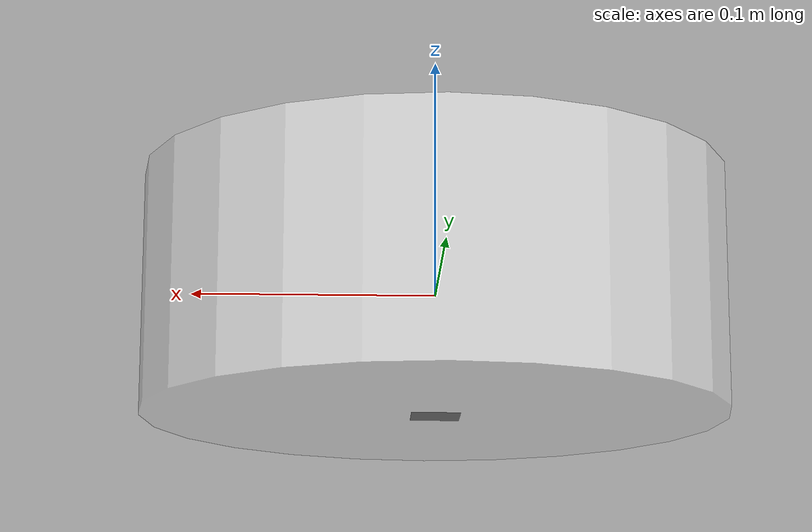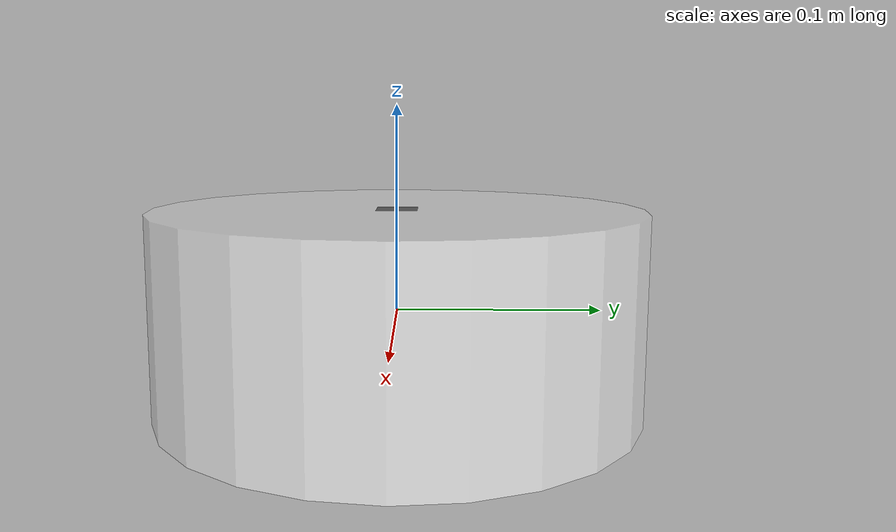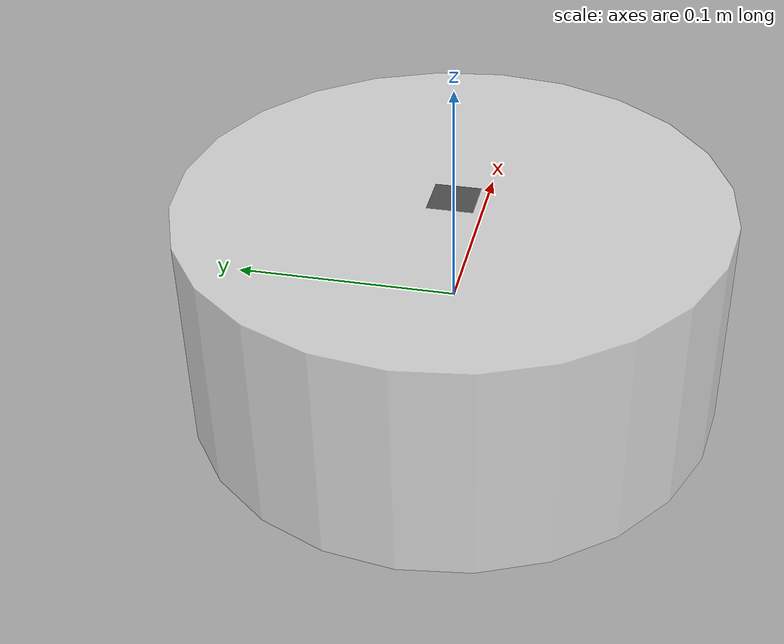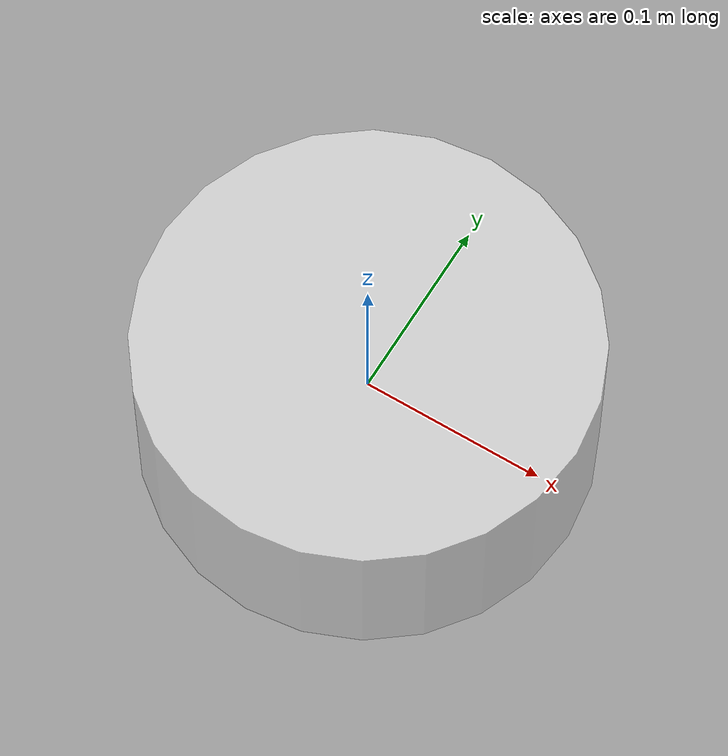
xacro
<?xml version="1.0"?>
<robot xmlns:xacro="http://www.ros.org/wiki/xacro" name="first_robot">

  <xacro:include filename="fishbot/common_inertial.xacro"/>

  <xacro:property name="base_radius" value="0.25"/>
  <xacro:property name="base_length" value="0.2"/>
  <xacro:property name="imu_size" value="0.02"/>

  <!-- 机器人的身体部分 -->
  <xacro:macro name="base_link" params="radius length">
    <link name="base_link">
      <!-- 部件的外观描述 -->
      <visual>
        <!-- 沿着几何中心的偏移和旋转量 -->
        <origin xyz="0.0 0.0 0.0" rpy="0.0 0.0 0.0"/>
        <!-- 形状的几何描述 -->
        <geometry>
          <!-- 圆柱体 ,半径,高度 -->
          <cylinder radius="${radius}" length="${length}"/>
        </geometry>
        <!-- 形状的材质描述 -->
        <material name="white">
          <color rgba="1.0 1.0 1.0 0.5"/>
        </material>
      </visual>
      <collision>
        <origin xyz="0.0 0.0 0.0" rpy="0.0 0.0 0.0"/>
        <geometry>
          <cylinder radius="${radius}" length="${length}"/>
        </geometry>
      </collision>
      <xacro:cylinder_inertial mass="1.0" radius="${radius}" length="${length}" rpy="0.0 0.0 0.0"/>
    </link>
  </xacro:macro>

  <!-- 机器人的IMU部件,惯性测量传感器 -->
  <xacro:macro name="imu_link" params="imu_name xyz">
    <link name="${imu_name}_link">
      <visual>
        <origin xyz="0.0 0.0 0.0" rpy="0.0 0.0 0.0"/>
        <geometry>
          <box size="${imu_size} ${imu_size} ${imu_size}"/>
        </geometry>
        <material name="black">
          <color rgba="0.0 0.0 0.0 0.5"/>
        </material>
      </visual>
      <collision>
        <origin xyz="0.0 0.0 0.0" rpy="0.0 0.0 0.0"/>
        <geometry>
          <box size="${imu_size} ${imu_size} ${imu_size}"/>
        </geometry>
      </collision>
      <xacro:box_inertial mass="0.01" x="${imu_size}" y="${imu_size}" z="${imu_size}"/>
    </link>
    <!-- 机器人的关节部件,用于组合机器人 -->
    <joint name="${imu_name}_joint" type="fixed">
      <parent link="base_link"/>
      <child link="${imu_name}_link"/>
      <origin xyz="${xyz}" rpy="0.0 0.0 0.0"/>
    </joint>
  </xacro:macro>

  <xacro:base_link radius="0.12" length="0.1"/>
  <xacro:imu_link imu_name="imu_up" xyz="0.0 0.0 0.04"/>
  <xacro:imu_link imu_name="imu_down" xyz="0.0 0.0 -0.04"/>

</robot>

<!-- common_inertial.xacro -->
<robot xmlns:xacro="http://www.ros.org/wiki/xacro">

  <!-- 长方体惯性，x/y/z 为边长 -->
  <xacro:macro name="box_inertial" params="mass x y z">
    <inertial>
      <origin xyz="0.0 0.0 0.0" rpy="0.0 0.0 0.0"/>
      <mass value="${mass}"/>
      <inertia
        ixx="${mass * (y*y + z*z) / 12.0}"
        ixy="0.0"
        ixz="0.0"
        iyy="${mass * (x*x + z*z) / 12.0}"
        iyz="0.0"
        izz="${mass * (x*x + y*y) / 12.0}"/>
    </inertial>
  </xacro:macro>

  <!-- 圆柱惯性，默认轴线沿 z；轮子等再通过 rpy 转到实际姿态 -->
  <xacro:macro name="cylinder_inertial" params="mass radius length rpy">
    <inertial>
      <origin xyz="0.0 0.0 0.0" rpy="${rpy}"/>
      <mass value="${mass}"/>
      <inertia
        ixx="${mass * (3*radius*radius + length*length) / 12.0}"
        ixy="0.0"
        ixz="0.0"
        iyy="${mass * (3*radius*radius + length*length) / 12.0}"
        iyz="0.0"
        izz="${mass * radius*radius / 2.0}"/>
    </inertial>
  </xacro:macro>

  <!-- 球体惯性 -->
  <xacro:macro name="sphere_inertial" params="mass radius">
    <inertial>
      <origin xyz="0.0 0.0 0.0" rpy="0.0 0.0 0.0"/>
      <mass value="${mass}"/>
      <inertia
        ixx="${2.0 * mass * radius * radius / 5.0}"
        ixy="0.0"
        ixz="0.0"
        iyy="${2.0 * mass * radius * radius / 5.0}"
        iyz="0.0"
        izz="${2.0 * mass * radius * radius / 5.0}"/>
    </inertial>
  </xacro:macro>

</robot>
